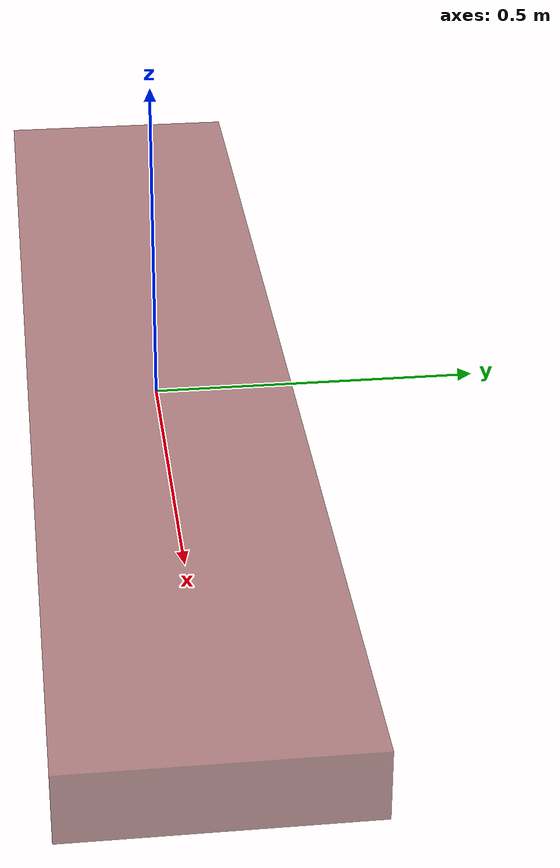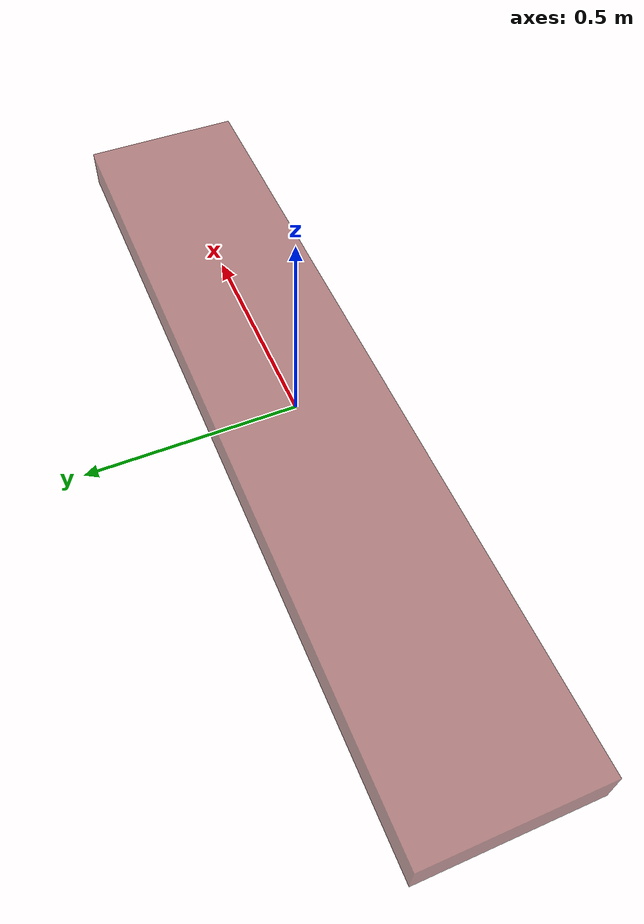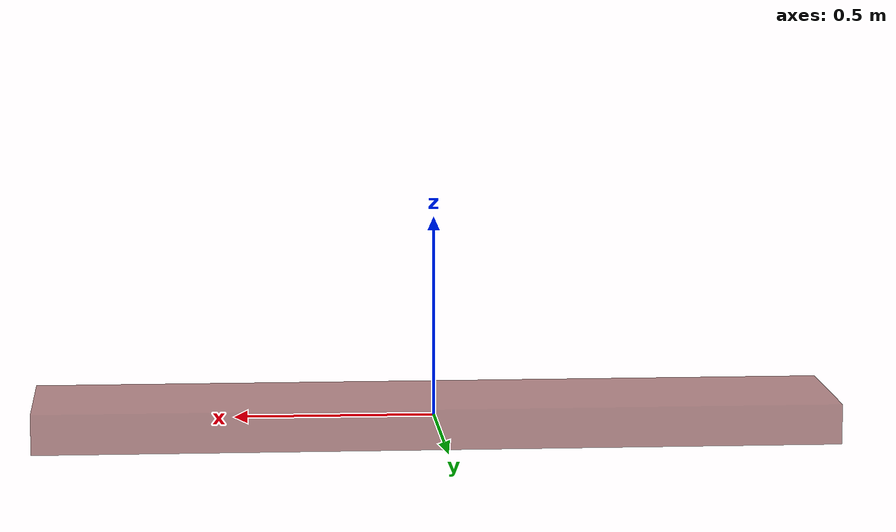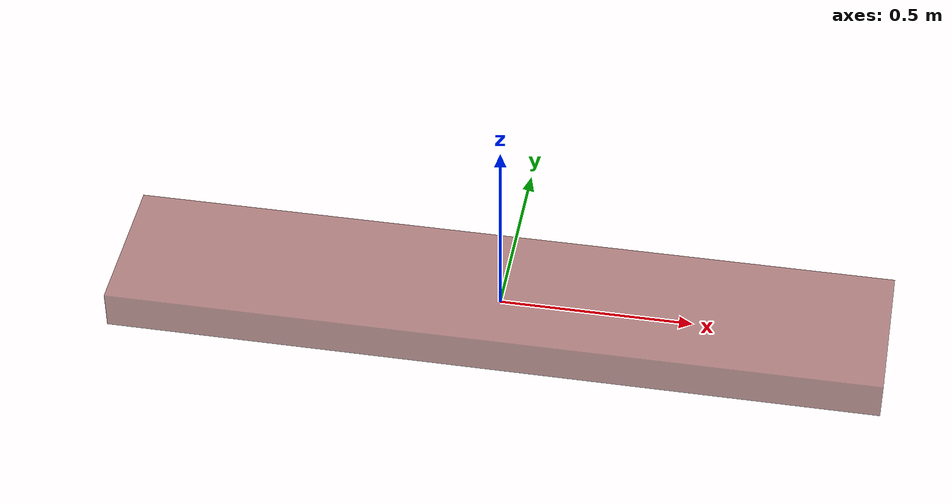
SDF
<?xml version="1.0"?>
<sdf version="1.7">

<model name="active_block">
  <link name="active_block">
    <inertial>
        <pose>0 0 0 0 0 0</pose>
        <mass>1</mass>
        <inertia>
          <ixx>0.014167</ixx>
          <ixy>0</ixy>
          <ixz>0</ixz>
          <iyy>0.33417</iyy>
          <iyz>0</iyz>
          <izz>0.34667</izz>
        </inertia>
    </inertial>
        <visual name="active_block">
          <pose>0 0 0 0 0 0</pose>
          <material>
            <diffuse>0.5 0.2 0.2 0.6</diffuse>
          </material>
          <geometry>
            <box>
              <size> 2.0 0.4 0.1 </size>
            </box>
          </geometry>
        </visual>
    <collision name="collision">
      <pose>0 0 0 0 0 0</pose>
      <geometry>
        <box>
            <size> 2.0 0.4 0.1 </size>
        </box>
      </geometry>
        <drake:proximity_properties>
            <drake:compliant_hydroelastic/>
            <drake:hydroelastic_modulus> 3.0e7 </drake:hydroelastic_modulus>
            <drake:mesh_resolution_hint> 0.15 </drake:mesh_resolution_hint>
            <drake:hunt_crossley_dissipation>10</drake:hunt_crossley_dissipation>
            <drake:mu_dynamic>0.4</drake:mu_dynamic>
        </drake:proximity_properties>
    </collision>
  </link>
  <joint name="planar_x" type="prismatic">
      <parent>world</parent>
      <child>active_block</child>
      <axis>
          <xyz>
              1 0 0
          </xyz>
          <limit>
              <lower>-2.0</lower>
              <upper>2.0</upper>
              <effort>50.0</effort>
          </limit>
          <dynamics>
              <damping>0.0</damping>
          </dynamics>
      </axis>
  </joint>
</model>

</sdf>
